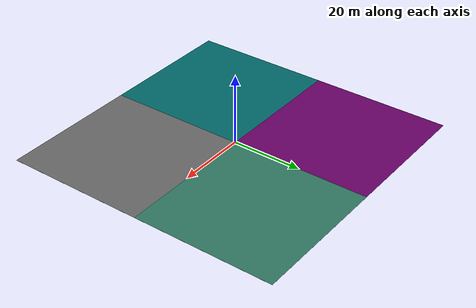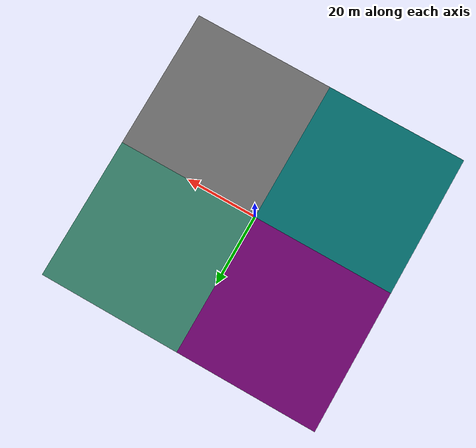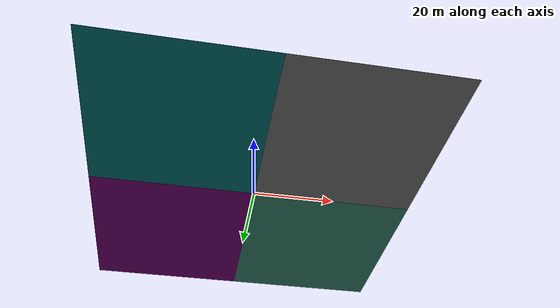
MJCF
<!-- TODO -->
<!-- (1) correct mass/inertial matricies (just weight for now) -->
<mujoco model="ball">
  <compiler angle="radian"/>
  <size nconmax="100" njmax="500"/>
  <option integrator="RK4" timestep="0.01"/>
  <include file="../friction_floors/friction_floor_4x4.xml"/>
  <asset>
    <texture builtin="checker" height="100" mark="cross" markrgb=".8 .8 .8" name="texplane" rgb1="0.26 0.12 0.36" rgb2="0.23 0.09 0.33" type="2d" width="100"/>
    <material name="matplane" reflectance="0.3" texrepeat="30 30" texture="texplane" texuniform="true"/>
  </asset>
  <visual>
    <headlight ambient="0.6 0.6 0.6" diffuse="0.5 0.5 0.5" specular="0.2 0.2 0.2"/>
    <map znear="0.001"/>
  </visual>
  <worldbody>
    <body name="Ball" pos="0.0 0.0 0.1">
      <geom mass="2" name="ball_geom" size="0.1" type="sphere" friction="0.0 0.0 0.000" rgba="0.0 0.0 0.9 1" condim="6"/>
      <joint name="free" type="free"/>
      <site name="rateX" pos="0 0 0" quat="1. 0. 0. 0." rgba="0.3 0.8 0.3 1" size="0.012 0.012 0.025" type="box"/>
      <site name="rateY" pos="0 0 0" quat="1. 0. 0. 0." rgba="0.3 0.8 0.3 1" size="0.012 0.012 0.025" type="box"/>
      <site name="rateZ" pos="0 0 0" quat="1. 0. 0. 0." rgba="0.3 0.8 0.3 1" size="0.012 0.012 0.025" type="box"/>
    </body>
  </worldbody>
  <actuator>
    <motor ctrllimited="false" ctrlrange="-1 1" gear="0. 0. 0. 1. 0. 0." site="rateX"/>
    <motor ctrllimited="false" ctrlrange="-1 1" gear="0. 0. 0. 0. 1. 0." site="rateY"/>
    <motor ctrllimited="false" ctrlrange="-1 1" gear="0. 0. 0. 0. 0. 1." site="rateZ"/>
  </actuator>
</mujoco>

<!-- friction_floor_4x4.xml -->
<mujoco model="friction_floor_1">
  <compiler angle="radian" />
  <asset>
    <texture name='a' builtin="gradient" height="100" rgb1="1 1 1" rgb2="0 0 0" type="skybox" width="100"/>
    <texture name="texplane0" type="2d" builtin="checker" rgb1="0.14 0.83 0.43" rgb2="0.23 0.09 0.33" width="100" height="100" mark="cross" markrgb=".8 .8 .8"/>
    <texture name="texplane1" type="2d" builtin="checker" rgb1="0 0 0" rgb2="0.8 0.8 0.8" width="100" height="100" mark="cross" markrgb=".8 .8 .8"/>
    <texture name="texplane2" type="2d" builtin="checker" rgb1="0 0 0" rgb2="0.0 0.8 0.8" width="100" height="100" mark="cross" markrgb=".8 .8 .8"/>
    <texture name="texplane3" type="2d" builtin="checker" rgb1="0 0 0" rgb2="0.8 0.0 0.8" width="100" height="100" mark="cross" markrgb=".8 .8 .8"/>
    <material name="matplane0" reflectance="0.2" texture="texplane0" texrepeat="1 1" texuniform="true"/>
    <material name="matplane1" reflectance="0.2" texture="texplane1" texrepeat="1 1" texuniform="true"/>
    <material name="matplane2" reflectance="0.2" texture="texplane2" texrepeat="1 1" texuniform="true"/>
    <material name="matplane3" reflectance="0.2" texture="texplane3" texrepeat="1 1" texuniform="true"/>
  </asset>
  <visual>
    <headlight ambient="0.6 0.6 0.6" diffuse="0.5 0.5 0.5" specular="0.2 0.2 0.2"/>
    <map znear="0.001" />
  </visual>
  <worldbody>
  	<!-- Floor XY -->
    <geom contype="1" friction="1 0 0.05" name="floor+5+5" pos="+20 +20 0" euler="0 0 0" size="20 20 0.01" type="box" material="matplane0" condim="6"/>
    <geom contype="1" friction="1 0 0.01" name="floor+5-5" pos="+20 -20 0" euler="0 0 0" size="20 20 0.01" type="box" material="matplane1" condim="6"/>
    <geom contype="1" friction="1 0 0.001" name="floor-5-5" pos="-20 -20 0" euler="0 0 0" size="20 20 0.01" type="box" material="matplane2" condim="6"/>
    <geom contype="1" friction="1 0 0.0001" name="floor-5+5" pos="-20 +20 0" euler="0 0 0" size="20 20 0.01" type="box" material="matplane3" condim="6"/>

  </worldbody>
</mujoco>
